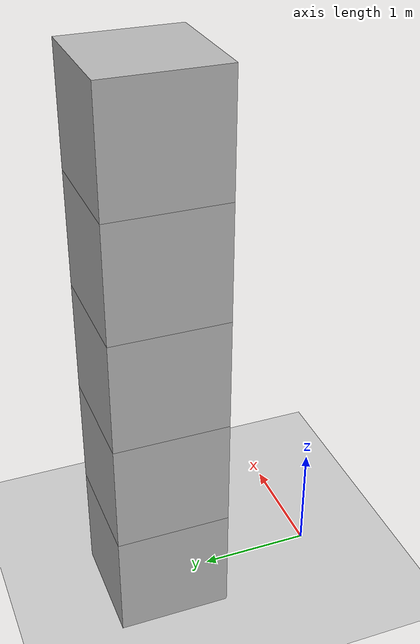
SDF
<?xml version="1.0" ?>
<sdf version="1.4">
  <world name="default">
    <physics type="ode">
      <gravity>0.000000 0.000000 -9.810000</gravity>
      <ode>
        <solver>
          <type>quick</type>
          <iters>50</iters>
          <precon_iters>0</precon_iters>
          <sor>1.000000</sor>
        </solver>
        <constraints>
          <cfm>0.000000</cfm>
          <erp>0.200000</erp>
          <contact_max_correcting_vel>1.000000</contact_max_correcting_vel>
          <contact_surface_layer>0.00100</contact_surface_layer>
        </constraints>
      </ode>
      <bullet>
        <solver>
          <type>sequential_impulse</type>
          <iters>50</iters>
          <sor>1.000000</sor>
        </solver>
        <constraints>
          <cfm>0.000000</cfm>
          <erp>0.200000</erp>
          <split_impulse>true</split_impulse>
          <split_impulse_penetration_threshold>-0.01</split_impulse_penetration_threshold>
          <contact_surface_layer>0.01000</contact_surface_layer>
        </constraints>
      </bullet>
      <simbody>
        <accuracy>0.001</accuracy>
        <max_transient_velocity>0.01</max_transient_velocity>
        <contact>
          <stiffness>1e8</stiffness>
          <dissipation>10</dissipation>
          <static_friction>0.15</static_friction>
          <dynamic_friction>0.1</dynamic_friction>
          <viscous_friction>0.0</viscous_friction>
        </contact>
      </simbody>
      <real_time_update_rate>0.000000</real_time_update_rate>
      <max_step_size>0.001000</max_step_size>
    </physics>
    <include>
      <uri>model://ground_plane</uri>
    </include>
    <include>
      <uri>model://sun</uri>
    </include>
    <model name="box_1">
      <allow_auto_disable>0</allow_auto_disable>
      <pose>0 1.5 0.5 0 0 0</pose>
      <link name="link">
        <inertial>
          <mass>1.0</mass>
          <inertia>
            <ixx>0.1666666</ixx>
            <iyy>0.1666666</iyy>
            <izz>0.1666666</izz>
          </inertia>
        </inertial>
        <collision name="collision">
          <geometry>
            <box>
              <size>1.0 1.0 1.0</size>
            </box>
          </geometry>
          <surface>
            <contact>
              <ode>
                <max_vel>1000.0</max_vel>
                <min_depth>0.001</min_depth>
              </ode>
            </contact>
          </surface>
        </collision>
        <visual name="visual">
          <geometry>
            <box>
              <size>1.0 1.0 1.0</size>
            </box>
          </geometry>
          <material>
            <script>Gazebo/WoodPallet</script>
          </material>
        </visual>
      </link>
    </model>
    <model name="box_2">
      <allow_auto_disable>0</allow_auto_disable>
      <pose>0 1.5 1.5 0 0 0</pose>
      <link name="link">
        <inertial>
          <mass>1.0</mass>
          <inertia>
            <ixx>0.1666666</ixx>
            <iyy>0.1666666</iyy>
            <izz>0.1666666</izz>
          </inertia>
        </inertial>
        <collision name="collision">
          <geometry>
            <box>
              <size>1.0 1.0 1.0</size>
            </box>
          </geometry>
          <surface>
            <contact>
              <ode>
                <max_vel>1000.0</max_vel>
                <min_depth>0.001</min_depth>
              </ode>
            </contact>
          </surface>
        </collision>
        <visual name="visual">
          <geometry>
            <box>
              <size>1.0 1.0 1.0</size>
            </box>
          </geometry>
          <material>
            <script>Gazebo/WoodPallet</script>
          </material>
        </visual>
      </link>
    </model>
    <model name="box_3">
      <allow_auto_disable>0</allow_auto_disable>
      <pose>0 1.5 2.5 0 0 0</pose>
      <link name="link">
        <inertial>
          <mass>1.0</mass>
          <inertia>
            <ixx>0.1666666</ixx>
            <iyy>0.1666666</iyy>
            <izz>0.1666666</izz>
          </inertia>
        </inertial>
        <collision name="collision">
          <geometry>
            <box>
              <size>1.0 1.0 1.0</size>
            </box>
          </geometry>
          <surface>
            <contact>
              <ode>
                <max_vel>1000.0</max_vel>
                <min_depth>0.001</min_depth>
              </ode>
            </contact>
          </surface>
        </collision>
        <visual name="visual">
          <geometry>
            <box>
              <size>1.0 1.0 1.0</size>
            </box>
          </geometry>
          <material>
            <script>Gazebo/WoodPallet</script>
          </material>
        </visual>
      </link>
    </model>
    <model name="box_4">
      <allow_auto_disable>0</allow_auto_disable>
      <pose>0 1.5 3.5 0 0 0</pose>
      <link name="link">
        <inertial>
          <mass>1.0</mass>
          <inertia>
            <ixx>0.1666666</ixx>
            <iyy>0.1666666</iyy>
            <izz>0.1666666</izz>
          </inertia>
        </inertial>
        <collision name="collision">
          <geometry>
            <box>
              <size>1.0 1.0 1.0</size>
            </box>
          </geometry>
          <surface>
            <contact>
              <ode>
                <max_vel>1000.0</max_vel>
                <min_depth>0.001</min_depth>
              </ode>
            </contact>
          </surface>
        </collision>
        <visual name="visual">
          <geometry>
            <box>
              <size>1.0 1.0 1.0</size>
            </box>
          </geometry>
          <material>
            <script>Gazebo/WoodPallet</script>
          </material>
        </visual>
      </link>
    </model>
    <model name="box_5">
      <allow_auto_disable>0</allow_auto_disable>
      <pose>0 1.5 4.5 0 0 0</pose>
      <link name="link">
        <inertial>
          <mass>1000.0</mass>
          <inertia>
            <ixx>0.1666666</ixx>
            <iyy>0.1666666</iyy>
            <izz>0.1666666</izz>
          </inertia>
        </inertial>
        <collision name="collision">
          <geometry>
            <box>
              <size>1.0 1.0 1.0</size>
            </box>
          </geometry>
          <surface>
            <contact>
              <ode>
                <max_vel>1000.0</max_vel>
                <min_depth>0.001</min_depth>
              </ode>
            </contact>
          </surface>
        </collision>
        <visual name="visual">
          <geometry>
            <box>
              <size>1.0 1.0 1.0</size>
            </box>
          </geometry>
          <material>
            <script>Gazebo/WoodPallet</script>
          </material>
        </visual>
      </link>
    </model>
  </world>
</sdf>
